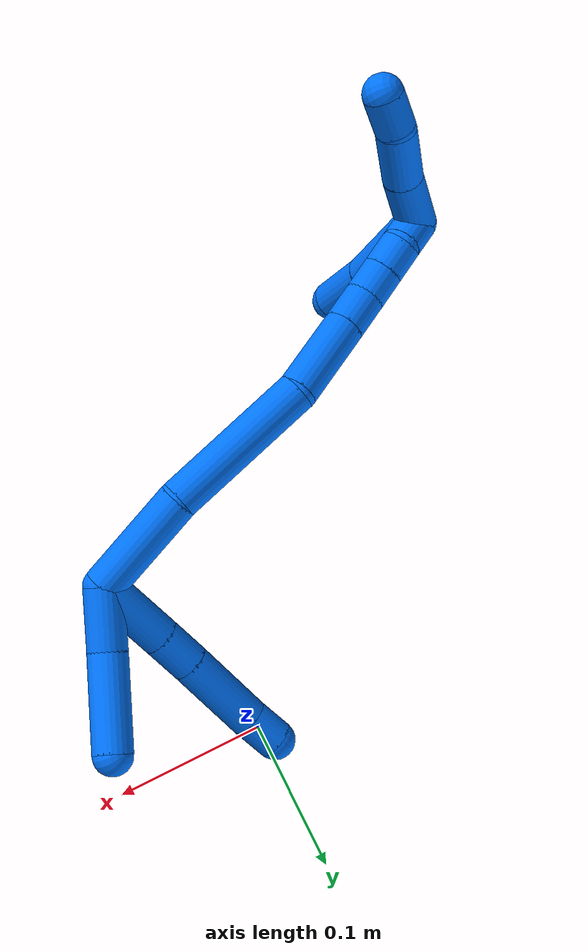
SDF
<sdf version="1.7">
 <world name="default">
  <model name="14">
   <static>0</static>
   <link name="14">
    <collision name="collision-cylinder-e_1_2_8">
     <pose>-0.007557 0.023056 0.002669 -1.45553 -0.314778 0.280914</pose>
     <geometry><cylinder><radius>0.0125</radius><length>0.048818</length></cylinder></geometry>
     <surface>
      <friction><ode><mu>1.16</mu><mu2>1.16</mu2><slip1>0</slip1><slip2>0</slip2></ode></friction>
      <contact><ode><kp>1e+06</kp><kd>1</kd><max_vel>0</max_vel><min_depth>0.001</min_depth></ode></contact>
     </surface>
    </collision>
    <visual name="visual-cylinder-e_1_2_8">
     <pose>-0.007557 0.023056 0.002669 -1.45553 -0.314778 0.280914</pose>
     <geometry><cylinder><radius>0.0125</radius><length>0.048818</length></cylinder></geometry>
     <material><ambient>0 0.462745 1 1</ambient></material>
    </visual>
    <collision name="collision-cylinder-e_2_8_9">
     <pose>-0.018686 0.05811 0.006975 -1.43523 -0.28682 0.25076</pose>
     <geometry><cylinder><radius>0.0125</radius><length>0.025251</length></cylinder></geometry>
     <surface>
      <friction><ode><mu>1.16</mu><mu2>1.16</mu2><slip1>0</slip1><slip2>0</slip2></ode></friction>
      <contact><ode><kp>1e+06</kp><kd>1</kd><max_vel>0</max_vel><min_depth>0.001</min_depth></ode></contact>
     </surface>
    </collision>
    <visual name="visual-cylinder-e_2_8_9">
     <pose>-0.018686 0.05811 0.006975 -1.43523 -0.28682 0.25076</pose>
     <geometry><cylinder><radius>0.0125</radius><length>0.025251</length></cylinder></geometry>
     <material><ambient>0 0.462745 1 1</ambient></material>
    </visual>
    <collision name="collision-cylinder-e_3_9_10">
     <pose>-0.029517 0.095572 0.011675 -1.45107 -0.275833 0.24497</pose>
     <geometry><cylinder><radius>0.0125</radius><length>0.05331</length></cylinder></geometry>
     <surface>
      <friction><ode><mu>1.16</mu><mu2>1.16</mu2><slip1>0</slip1><slip2>0</slip2></ode></friction>
      <contact><ode><kp>1e+06</kp><kd>1</kd><max_vel>0</max_vel><min_depth>0.001</min_depth></ode></contact>
     </surface>
    </collision>
    <visual name="visual-cylinder-e_3_9_10">
     <pose>-0.029517 0.095572 0.011675 -1.45107 -0.275833 0.24497</pose>
     <geometry><cylinder><radius>0.0125</radius><length>0.05331</length></cylinder></geometry>
     <material><ambient>0 0.462745 1 1</ambient></material>
    </visual>
    <collision name="collision-cylinder-e_4_10_6">
     <pose>-0.039664 0.131725 0.017048 -1.35804 -0.258167 0.208754</pose>
     <geometry><cylinder><radius>0.0125</radius><length>0.022622</length></cylinder></geometry>
     <surface>
      <friction><ode><mu>1.16</mu><mu2>1.16</mu2><slip1>0</slip1><slip2>0</slip2></ode></friction>
      <contact><ode><kp>1e+06</kp><kd>1</kd><max_vel>0</max_vel><min_depth>0.001</min_depth></ode></contact>
     </surface>
    </collision>
    <visual name="visual-cylinder-e_4_10_6">
     <pose>-0.039664 0.131725 0.017048 -1.35804 -0.258167 0.208754</pose>
     <geometry><cylinder><radius>0.0125</radius><length>0.022622</length></cylinder></geometry>
     <material><ambient>0 0.462745 1 1</ambient></material>
    </visual>
    <collision name="collision-cylinder-e_1_2_11">
     <pose>0.00782 0.017311 -0.004778 -1.84011 0.41069 -0.534051</pose>
     <geometry><cylinder><radius>0.0125</radius><length>0.039174</length></cylinder></geometry>
     <surface>
      <friction><ode><mu>1.16</mu><mu2>1.16</mu2><slip1>0</slip1><slip2>0</slip2></ode></friction>
      <contact><ode><kp>1e+06</kp><kd>1</kd><max_vel>0</max_vel><min_depth>0.001</min_depth></ode></contact>
     </surface>
    </collision>
    <visual name="visual-cylinder-e_1_2_11">
     <pose>0.00782 0.017311 -0.004778 -1.84011 0.41069 -0.534051</pose>
     <geometry><cylinder><radius>0.0125</radius><length>0.039174</length></cylinder></geometry>
     <material><ambient>0 0.462745 1 1</ambient></material>
    </visual>
    <collision name="collision-cylinder-e_2_11_5">
     <pose>0.032177 0.059887 -0.013188 -1.71357 0.574885 -0.657569</pose>
     <geometry><cylinder><radius>0.0125</radius><length>0.060826</length></cylinder></geometry>
     <surface>
      <friction><ode><mu>1.16</mu><mu2>1.16</mu2><slip1>0</slip1><slip2>0</slip2></ode></friction>
      <contact><ode><kp>1e+06</kp><kd>1</kd><max_vel>0</max_vel><min_depth>0.001</min_depth></ode></contact>
     </surface>
    </collision>
    <visual name="visual-cylinder-e_2_11_5">
     <pose>0.032177 0.059887 -0.013188 -1.71357 0.574885 -0.657569</pose>
     <geometry><cylinder><radius>0.0125</radius><length>0.060826</length></cylinder></geometry>
     <material><ambient>0 0.462745 1 1</ambient></material>
    </visual>
    <collision name="collision-cylinder-e_1_2_12">
     <pose>-0.018808 -0.011641 0.025975 0.421314 -0.58389 -0.128349</pose>
     <geometry><cylinder><radius>0.0125</radius><length>0.068234</length></cylinder></geometry>
     <surface>
      <friction><ode><mu>1.16</mu><mu2>1.16</mu2><slip1>0</slip1><slip2>0</slip2></ode></friction>
      <contact><ode><kp>1e+06</kp><kd>1</kd><max_vel>0</max_vel><min_depth>0.001</min_depth></ode></contact>
     </surface>
    </collision>
    <visual name="visual-cylinder-e_1_2_12">
     <pose>-0.018808 -0.011641 0.025975 0.421314 -0.58389 -0.128349</pose>
     <geometry><cylinder><radius>0.0125</radius><length>0.068234</length></cylinder></geometry>
     <material><ambient>0 0.462745 1 1</ambient></material>
    </visual>
    <collision name="collision-cylinder-e_2_12_13">
     <pose>-0.071066 -0.032974 0.084881 0.286244 -0.772461 -0.11707</pose>
     <geometry><cylinder><radius>0.0125</radius><length>0.095859</length></cylinder></geometry>
     <surface>
      <friction><ode><mu>1.16</mu><mu2>1.16</mu2><slip1>0</slip1><slip2>0</slip2></ode></friction>
      <contact><ode><kp>1e+06</kp><kd>1</kd><max_vel>0</max_vel><min_depth>0.001</min_depth></ode></contact>
     </surface>
    </collision>
    <visual name="visual-cylinder-e_2_12_13">
     <pose>-0.071066 -0.032974 0.084881 0.286244 -0.772461 -0.11707</pose>
     <geometry><cylinder><radius>0.0125</radius><length>0.095859</length></cylinder></geometry>
     <material><ambient>0 0.462745 1 1</ambient></material>
    </visual>
    <collision name="collision-cylinder-e_3_13_14">
     <pose>-0.126174 -0.051143 0.129106 0.643858 -0.992992 -0.357531</pose>
     <geometry><cylinder><radius>0.0125</radius><length>0.051711</length></cylinder></geometry>
     <surface>
      <friction><ode><mu>1.16</mu><mu2>1.16</mu2><slip1>0</slip1><slip2>0</slip2></ode></friction>
      <contact><ode><kp>1e+06</kp><kd>1</kd><max_vel>0</max_vel><min_depth>0.001</min_depth></ode></contact>
     </surface>
    </collision>
    <visual name="visual-cylinder-e_3_13_14">
     <pose>-0.126174 -0.051143 0.129106 0.643858 -0.992992 -0.357531</pose>
     <geometry><cylinder><radius>0.0125</radius><length>0.051711</length></cylinder></geometry>
     <material><ambient>0 0.462745 1 1</ambient></material>
    </visual>
    <collision name="collision-cylinder-e_4_14_15">
     <pose>-0.157958 -0.063666 0.145591 0.662102 -0.994463 -0.368822</pose>
     <geometry><cylinder><radius>0.0125</radius><length>0.024153</length></cylinder></geometry>
     <surface>
      <friction><ode><mu>1.16</mu><mu2>1.16</mu2><slip1>0</slip1><slip2>0</slip2></ode></friction>
      <contact><ode><kp>1e+06</kp><kd>1</kd><max_vel>0</max_vel><min_depth>0.001</min_depth></ode></contact>
     </surface>
    </collision>
    <visual name="visual-cylinder-e_4_14_15">
     <pose>-0.157958 -0.063666 0.145591 0.662102 -0.994463 -0.368822</pose>
     <geometry><cylinder><radius>0.0125</radius><length>0.024153</length></cylinder></geometry>
     <material><ambient>0 0.462745 1 1</ambient></material>
    </visual>
    <collision name="collision-cylinder-e_5_15_16">
     <pose>-0.175263 -0.071685 0.156519 0.60557 -0.799553 -0.262471</pose>
     <geometry><cylinder><radius>0.0125</radius><length>0.020024</length></cylinder></geometry>
     <surface>
      <friction><ode><mu>1.16</mu><mu2>1.16</mu2><slip1>0</slip1><slip2>0</slip2></ode></friction>
      <contact><ode><kp>1e+06</kp><kd>1</kd><max_vel>0</max_vel><min_depth>0.001</min_depth></ode></contact>
     </surface>
    </collision>
    <visual name="visual-cylinder-e_5_15_16">
     <pose>-0.175263 -0.071685 0.156519 0.60557 -0.799553 -0.262471</pose>
     <geometry><cylinder><radius>0.0125</radius><length>0.020024</length></cylinder></geometry>
     <material><ambient>0 0.462745 1 1</ambient></material>
    </visual>
    <collision name="collision-cylinder-e_6_16_17">
     <pose>-0.189623 -0.07962 0.167992 0.604649 -0.800231 -0.262296</pose>
     <geometry><cylinder><radius>0.0125</radius><length>0.020017</length></cylinder></geometry>
     <surface>
      <friction><ode><mu>1.16</mu><mu2>1.16</mu2><slip1>0</slip1><slip2>0</slip2></ode></friction>
      <contact><ode><kp>1e+06</kp><kd>1</kd><max_vel>0</max_vel><min_depth>0.001</min_depth></ode></contact>
     </surface>
    </collision>
    <visual name="visual-cylinder-e_6_16_17">
     <pose>-0.189623 -0.07962 0.167992 0.604649 -0.800231 -0.262296</pose>
     <geometry><cylinder><radius>0.0125</radius><length>0.020017</length></cylinder></geometry>
     <material><ambient>0 0.462745 1 1</ambient></material>
    </visual>
    <collision name="collision-cylinder-e_7_17_1">
     <pose>-0.20582 -0.086475 0.176948 0.731799 -1.12324 -0.47314</pose>
     <geometry><cylinder><radius>0.0125</radius><length>0.020002</length></cylinder></geometry>
     <surface>
      <friction><ode><mu>1.16</mu><mu2>1.16</mu2><slip1>0</slip1><slip2>0</slip2></ode></friction>
      <contact><ode><kp>1e+06</kp><kd>1</kd><max_vel>0</max_vel><min_depth>0.001</min_depth></ode></contact>
     </surface>
    </collision>
    <visual name="visual-cylinder-e_7_17_1">
     <pose>-0.20582 -0.086475 0.176948 0.731799 -1.12324 -0.47314</pose>
     <geometry><cylinder><radius>0.0125</radius><length>0.020002</length></cylinder></geometry>
     <material><ambient>0 0.462745 1 1</ambient></material>
    </visual>
    <collision name="collision-cylinder-e_1_1_18">
     <pose>-0.206786 -0.104299 0.187631 1.10729 0.449351 0.280669</pose>
     <geometry><cylinder><radius>0.0125</radius><length>0.037065</length></cylinder></geometry>
     <surface>
      <friction><ode><mu>1.16</mu><mu2>1.16</mu2><slip1>0</slip1><slip2>0</slip2></ode></friction>
      <contact><ode><kp>1e+06</kp><kd>1</kd><max_vel>0</max_vel><min_depth>0.001</min_depth></ode></contact>
     </surface>
    </collision>
    <visual name="visual-cylinder-e_1_1_18">
     <pose>-0.206786 -0.104299 0.187631 1.10729 0.449351 0.280669</pose>
     <geometry><cylinder><radius>0.0125</radius><length>0.037065</length></cylinder></geometry>
     <material><ambient>0 0.462745 1 1</ambient></material>
    </visual>
    <collision name="collision-cylinder-e_2_18_19">
     <pose>-0.190497 -0.133558 0.204877 0.97166 0.443359 0.23691</pose>
     <geometry><cylinder><radius>0.0125</radius><length>0.038412</length></cylinder></geometry>
     <surface>
      <friction><ode><mu>1.16</mu><mu2>1.16</mu2><slip1>0</slip1><slip2>0</slip2></ode></friction>
      <contact><ode><kp>1e+06</kp><kd>1</kd><max_vel>0</max_vel><min_depth>0.001</min_depth></ode></contact>
     </surface>
    </collision>
    <visual name="visual-cylinder-e_2_18_19">
     <pose>-0.190497 -0.133558 0.204877 0.97166 0.443359 0.23691</pose>
     <geometry><cylinder><radius>0.0125</radius><length>0.038412</length></cylinder></geometry>
     <material><ambient>0 0.462745 1 1</ambient></material>
    </visual>
    <collision name="collision-cylinder-e_3_19_4">
     <pose>-0.178228 -0.158823 0.218465 1.23609 0.334889 0.239197</pose>
     <geometry><cylinder><radius>0.0125</radius><length>0.024523</length></cylinder></geometry>
     <surface>
      <friction><ode><mu>1.16</mu><mu2>1.16</mu2><slip1>0</slip1><slip2>0</slip2></ode></friction>
      <contact><ode><kp>1e+06</kp><kd>1</kd><max_vel>0</max_vel><min_depth>0.001</min_depth></ode></contact>
     </surface>
    </collision>
    <visual name="visual-cylinder-e_3_19_4">
     <pose>-0.178228 -0.158823 0.218465 1.23609 0.334889 0.239197</pose>
     <geometry><cylinder><radius>0.0125</radius><length>0.024523</length></cylinder></geometry>
     <material><ambient>0 0.462745 1 1</ambient></material>
    </visual>
    <collision name="collision-cylinder-e_1_1_20">
     <pose>-0.220222 -0.080452 0.152346 -2.83147 -0.182313 1.05829</pose>
     <geometry><cylinder><radius>0.0125</radius><length>0.059414</length></cylinder></geometry>
     <surface>
      <friction><ode><mu>1.16</mu><mu2>1.16</mu2><slip1>0</slip1><slip2>0</slip2></ode></friction>
      <contact><ode><kp>1e+06</kp><kd>1</kd><max_vel>0</max_vel><min_depth>0.001</min_depth></ode></contact>
     </surface>
    </collision>
    <visual name="visual-cylinder-e_1_1_20">
     <pose>-0.220222 -0.080452 0.152346 -2.83147 -0.182313 1.05829</pose>
     <geometry><cylinder><radius>0.0125</radius><length>0.059414</length></cylinder></geometry>
     <material><ambient>0 0.462745 1 1</ambient></material>
    </visual>
    <collision name="collision-cylinder-e_2_20_3">
     <pose>-0.230863 -0.067752 0.105293 -2.94732 -0.26195 1.86782</pose>
     <geometry><cylinder><radius>0.0125</radius><length>0.040586</length></cylinder></geometry>
     <surface>
      <friction><ode><mu>1.16</mu><mu2>1.16</mu2><slip1>0</slip1><slip2>0</slip2></ode></friction>
      <contact><ode><kp>1e+06</kp><kd>1</kd><max_vel>0</max_vel><min_depth>0.001</min_depth></ode></contact>
     </surface>
    </collision>
    <visual name="visual-cylinder-e_2_20_3">
     <pose>-0.230863 -0.067752 0.105293 -2.94732 -0.26195 1.86782</pose>
     <geometry><cylinder><radius>0.0125</radius><length>0.040586</length></cylinder></geometry>
     <material><ambient>0 0.462745 1 1</ambient></material>
    </visual>
    <collision name="collision-sphere-3">
     <pose>-0.236118 -0.063968 0.086061 0 -0 0</pose>
     <geometry><sphere><radius>0.0125</radius></sphere></geometry>
     <surface>
      <friction><ode><mu>1.16</mu><mu2>1.16</mu2><slip1>0</slip1><slip2>0</slip2></ode></friction>
      <contact><ode><kp>1e+06</kp><kd>1</kd><max_vel>0</max_vel><min_depth>0.001</min_depth></ode></contact>
     </surface>
    </collision>
    <visual name="visual-sphere-3">
     <pose>-0.236118 -0.063968 0.086061 0 -0 0</pose>
     <geometry><sphere><radius>0.0125</radius></sphere></geometry>
     <material><ambient>0 0.462745 1 1</ambient></material>
    </visual>
    <collision name="collision-sphere-20">
     <pose>-0.225608 -0.071536 0.124525 0 -0 0</pose>
     <geometry><sphere><radius>0.0125</radius></sphere></geometry>
     <surface>
      <friction><ode><mu>1.16</mu><mu2>1.16</mu2><slip1>0</slip1><slip2>0</slip2></ode></friction>
      <contact><ode><kp>1e+06</kp><kd>1</kd><max_vel>0</max_vel><min_depth>0.001</min_depth></ode></contact>
     </surface>
    </collision>
    <visual name="visual-sphere-20">
     <pose>-0.225608 -0.071536 0.124525 0 -0 0</pose>
     <geometry><sphere><radius>0.0125</radius></sphere></geometry>
     <material><ambient>0 0.462745 1 1</ambient></material>
    </visual>
    <collision name="collision-sphere-4">
     <pose>-0.174198 -0.16976 0.222269 0 -0 0</pose>
     <geometry><sphere><radius>0.0125</radius></sphere></geometry>
     <surface>
      <friction><ode><mu>1.16</mu><mu2>1.16</mu2><slip1>0</slip1><slip2>0</slip2></ode></friction>
      <contact><ode><kp>1e+06</kp><kd>1</kd><max_vel>0</max_vel><min_depth>0.001</min_depth></ode></contact>
     </surface>
    </collision>
    <visual name="visual-sphere-4">
     <pose>-0.174198 -0.16976 0.222269 0 -0 0</pose>
     <geometry><sphere><radius>0.0125</radius></sphere></geometry>
     <material><ambient>0 0.462745 1 1</ambient></material>
    </visual>
    <collision name="collision-sphere-11">
     <pose>0.01564 0.034622 -0.009556 0 -0 0</pose>
     <geometry><sphere><radius>0.0125</radius></sphere></geometry>
     <surface>
      <friction><ode><mu>1.16</mu><mu2>1.16</mu2><slip1>0</slip1><slip2>0</slip2></ode></friction>
      <contact><ode><kp>1e+06</kp><kd>1</kd><max_vel>0</max_vel><min_depth>0.001</min_depth></ode></contact>
     </surface>
    </collision>
    <visual name="visual-sphere-11">
     <pose>0.01564 0.034622 -0.009556 0 -0 0</pose>
     <geometry><sphere><radius>0.0125</radius></sphere></geometry>
     <material><ambient>0 0.462745 1 1</ambient></material>
    </visual>
    <collision name="collision-sphere-6">
     <pose>-0.042552 0.142414 0.019357 0 -0 0</pose>
     <geometry><sphere><radius>0.0125</radius></sphere></geometry>
     <surface>
      <friction><ode><mu>1.16</mu><mu2>1.16</mu2><slip1>0</slip1><slip2>0</slip2></ode></friction>
      <contact><ode><kp>1e+06</kp><kd>1</kd><max_vel>0</max_vel><min_depth>0.001</min_depth></ode></contact>
     </surface>
    </collision>
    <visual name="visual-sphere-6">
     <pose>-0.042552 0.142414 0.019357 0 -0 0</pose>
     <geometry><sphere><radius>0.0125</radius></sphere></geometry>
     <material><ambient>0 0.462745 1 1</ambient></material>
    </visual>
    <collision name="collision-sphere-10">
     <pose>-0.036777 0.121036 0.014739 0 -0 0</pose>
     <geometry><sphere><radius>0.0125</radius></sphere></geometry>
     <surface>
      <friction><ode><mu>1.16</mu><mu2>1.16</mu2><slip1>0</slip1><slip2>0</slip2></ode></friction>
      <contact><ode><kp>1e+06</kp><kd>1</kd><max_vel>0</max_vel><min_depth>0.001</min_depth></ode></contact>
     </surface>
    </collision>
    <visual name="visual-sphere-10">
     <pose>-0.036777 0.121036 0.014739 0 -0 0</pose>
     <geometry><sphere><radius>0.0125</radius></sphere></geometry>
     <material><ambient>0 0.462745 1 1</ambient></material>
    </visual>
    <collision name="collision-sphere-9">
     <pose>-0.022258 0.070108 0.008612 0 -0 0</pose>
     <geometry><sphere><radius>0.0125</radius></sphere></geometry>
     <surface>
      <friction><ode><mu>1.16</mu><mu2>1.16</mu2><slip1>0</slip1><slip2>0</slip2></ode></friction>
      <contact><ode><kp>1e+06</kp><kd>1</kd><max_vel>0</max_vel><min_depth>0.001</min_depth></ode></contact>
     </surface>
    </collision>
    <visual name="visual-sphere-9">
     <pose>-0.022258 0.070108 0.008612 0 -0 0</pose>
     <geometry><sphere><radius>0.0125</radius></sphere></geometry>
     <material><ambient>0 0.462745 1 1</ambient></material>
    </visual>
    <collision name="collision-sphere-2">
     <geometry><sphere><radius>0.0125</radius></sphere></geometry>
     <surface>
      <friction><ode><mu>1.16</mu><mu2>1.16</mu2><slip1>0</slip1><slip2>0</slip2></ode></friction>
      <contact><ode><kp>1e+06</kp><kd>1</kd><max_vel>0</max_vel><min_depth>0.001</min_depth></ode></contact>
     </surface>
    </collision>
    <visual name="visual-sphere-2">
     <geometry><sphere><radius>0.0125</radius></sphere></geometry>
     <material><ambient>0 0.462745 1 1</ambient></material>
    </visual>
    <collision name="collision-sphere-19">
     <pose>-0.182258 -0.147885 0.214661 0 -0 0</pose>
     <geometry><sphere><radius>0.0125</radius></sphere></geometry>
     <surface>
      <friction><ode><mu>1.16</mu><mu2>1.16</mu2><slip1>0</slip1><slip2>0</slip2></ode></friction>
      <contact><ode><kp>1e+06</kp><kd>1</kd><max_vel>0</max_vel><min_depth>0.001</min_depth></ode></contact>
     </surface>
    </collision>
    <visual name="visual-sphere-19">
     <pose>-0.182258 -0.147885 0.214661 0 -0 0</pose>
     <geometry><sphere><radius>0.0125</radius></sphere></geometry>
     <material><ambient>0 0.462745 1 1</ambient></material>
    </visual>
    <collision name="collision-sphere-8">
     <pose>-0.015114 0.046111 0.005339 0 -0 0</pose>
     <geometry><sphere><radius>0.0125</radius></sphere></geometry>
     <surface>
      <friction><ode><mu>1.16</mu><mu2>1.16</mu2><slip1>0</slip1><slip2>0</slip2></ode></friction>
      <contact><ode><kp>1e+06</kp><kd>1</kd><max_vel>0</max_vel><min_depth>0.001</min_depth></ode></contact>
     </surface>
    </collision>
    <visual name="visual-sphere-8">
     <pose>-0.015114 0.046111 0.005339 0 -0 0</pose>
     <geometry><sphere><radius>0.0125</radius></sphere></geometry>
     <material><ambient>0 0.462745 1 1</ambient></material>
    </visual>
    <collision name="collision-sphere-5">
     <pose>0.048713 0.085151 -0.01682 0 -0 0</pose>
     <geometry><sphere><radius>0.0125</radius></sphere></geometry>
     <surface>
      <friction><ode><mu>1.16</mu><mu2>1.16</mu2><slip1>0</slip1><slip2>0</slip2></ode></friction>
      <contact><ode><kp>1e+06</kp><kd>1</kd><max_vel>0</max_vel><min_depth>0.001</min_depth></ode></contact>
     </surface>
    </collision>
    <visual name="visual-sphere-5">
     <pose>0.048713 0.085151 -0.01682 0 -0 0</pose>
     <geometry><sphere><radius>0.0125</radius></sphere></geometry>
     <material><ambient>0 0.462745 1 1</ambient></material>
    </visual>
    <collision name="collision-sphere-12">
     <pose>-0.037615 -0.023282 0.051951 0 -0 0</pose>
     <geometry><sphere><radius>0.0125</radius></sphere></geometry>
     <surface>
      <friction><ode><mu>1.16</mu><mu2>1.16</mu2><slip1>0</slip1><slip2>0</slip2></ode></friction>
      <contact><ode><kp>1e+06</kp><kd>1</kd><max_vel>0</max_vel><min_depth>0.001</min_depth></ode></contact>
     </surface>
    </collision>
    <visual name="visual-sphere-12">
     <pose>-0.037615 -0.023282 0.051951 0 -0 0</pose>
     <geometry><sphere><radius>0.0125</radius></sphere></geometry>
     <material><ambient>0 0.462745 1 1</ambient></material>
    </visual>
    <collision name="collision-sphere-13">
     <pose>-0.104516 -0.042666 0.117811 0 -0 0</pose>
     <geometry><sphere><radius>0.0125</radius></sphere></geometry>
     <surface>
      <friction><ode><mu>1.16</mu><mu2>1.16</mu2><slip1>0</slip1><slip2>0</slip2></ode></friction>
      <contact><ode><kp>1e+06</kp><kd>1</kd><max_vel>0</max_vel><min_depth>0.001</min_depth></ode></contact>
     </surface>
    </collision>
    <visual name="visual-sphere-13">
     <pose>-0.104516 -0.042666 0.117811 0 -0 0</pose>
     <geometry><sphere><radius>0.0125</radius></sphere></geometry>
     <material><ambient>0 0.462745 1 1</ambient></material>
    </visual>
    <collision name="collision-sphere-14">
     <pose>-0.147832 -0.05962 0.1404 0 -0 0</pose>
     <geometry><sphere><radius>0.0125</radius></sphere></geometry>
     <surface>
      <friction><ode><mu>1.16</mu><mu2>1.16</mu2><slip1>0</slip1><slip2>0</slip2></ode></friction>
      <contact><ode><kp>1e+06</kp><kd>1</kd><max_vel>0</max_vel><min_depth>0.001</min_depth></ode></contact>
     </surface>
    </collision>
    <visual name="visual-sphere-14">
     <pose>-0.147832 -0.05962 0.1404 0 -0 0</pose>
     <geometry><sphere><radius>0.0125</radius></sphere></geometry>
     <material><ambient>0 0.462745 1 1</ambient></material>
    </visual>
    <collision name="collision-sphere-15">
     <pose>-0.168084 -0.067712 0.150781 0 -0 0</pose>
     <geometry><sphere><radius>0.0125</radius></sphere></geometry>
     <surface>
      <friction><ode><mu>1.16</mu><mu2>1.16</mu2><slip1>0</slip1><slip2>0</slip2></ode></friction>
      <contact><ode><kp>1e+06</kp><kd>1</kd><max_vel>0</max_vel><min_depth>0.001</min_depth></ode></contact>
     </surface>
    </collision>
    <visual name="visual-sphere-15">
     <pose>-0.168084 -0.067712 0.150781 0 -0 0</pose>
     <geometry><sphere><radius>0.0125</radius></sphere></geometry>
     <material><ambient>0 0.462745 1 1</ambient></material>
    </visual>
    <collision name="collision-sphere-16">
     <pose>-0.182442 -0.075657 0.162257 0 -0 0</pose>
     <geometry><sphere><radius>0.0125</radius></sphere></geometry>
     <surface>
      <friction><ode><mu>1.16</mu><mu2>1.16</mu2><slip1>0</slip1><slip2>0</slip2></ode></friction>
      <contact><ode><kp>1e+06</kp><kd>1</kd><max_vel>0</max_vel><min_depth>0.001</min_depth></ode></contact>
     </surface>
    </collision>
    <visual name="visual-sphere-16">
     <pose>-0.182442 -0.075657 0.162257 0 -0 0</pose>
     <geometry><sphere><radius>0.0125</radius></sphere></geometry>
     <material><ambient>0 0.462745 1 1</ambient></material>
    </visual>
    <collision name="collision-sphere-17">
     <pose>-0.196804 -0.083583 0.173728 0 -0 0</pose>
     <geometry><sphere><radius>0.0125</radius></sphere></geometry>
     <surface>
      <friction><ode><mu>1.16</mu><mu2>1.16</mu2><slip1>0</slip1><slip2>0</slip2></ode></friction>
      <contact><ode><kp>1e+06</kp><kd>1</kd><max_vel>0</max_vel><min_depth>0.001</min_depth></ode></contact>
     </surface>
    </collision>
    <visual name="visual-sphere-17">
     <pose>-0.196804 -0.083583 0.173728 0 -0 0</pose>
     <geometry><sphere><radius>0.0125</radius></sphere></geometry>
     <material><ambient>0 0.462745 1 1</ambient></material>
    </visual>
    <collision name="collision-sphere-1">
     <pose>-0.214836 -0.089367 0.180167 0 -0 0</pose>
     <geometry><sphere><radius>0.0125</radius></sphere></geometry>
     <surface>
      <friction><ode><mu>1.16</mu><mu2>1.16</mu2><slip1>0</slip1><slip2>0</slip2></ode></friction>
      <contact><ode><kp>1e+06</kp><kd>1</kd><max_vel>0</max_vel><min_depth>0.001</min_depth></ode></contact>
     </surface>
    </collision>
    <visual name="visual-sphere-1">
     <pose>-0.214836 -0.089367 0.180167 0 -0 0</pose>
     <geometry><sphere><radius>0.0125</radius></sphere></geometry>
     <material><ambient>0 0.462745 1 1</ambient></material>
    </visual>
    <collision name="collision-sphere-18">
     <pose>-0.198736 -0.11923 0.195094 0 -0 0</pose>
     <geometry><sphere><radius>0.0125</radius></sphere></geometry>
     <surface>
      <friction><ode><mu>1.16</mu><mu2>1.16</mu2><slip1>0</slip1><slip2>0</slip2></ode></friction>
      <contact><ode><kp>1e+06</kp><kd>1</kd><max_vel>0</max_vel><min_depth>0.001</min_depth></ode></contact>
     </surface>
    </collision>
    <visual name="visual-sphere-18">
     <pose>-0.198736 -0.11923 0.195094 0 -0 0</pose>
     <geometry><sphere><radius>0.0125</radius></sphere></geometry>
     <material><ambient>0 0.462745 1 1</ambient></material>
    </visual>
    <inertial>
     <pose>-0.096949 -0.024438 0.085293 0 -0 0</pose>
     <mass>0.75</mass>
     <inertia>
      <ixx>0.000149</ixx>
      <ixy>0</ixy>
      <ixz>0</ixz>
      <iyy>0.000147</iyy>
      <iyz>0</iyz>
      <izz>7.5e-05</izz>
     </inertia>
    </inertial>
   </link>
   <pose>0.046083 -0.114071 0.139809 -0.456503 -0.794279 0.408132</pose>
  </model>
 </world>
</sdf>
